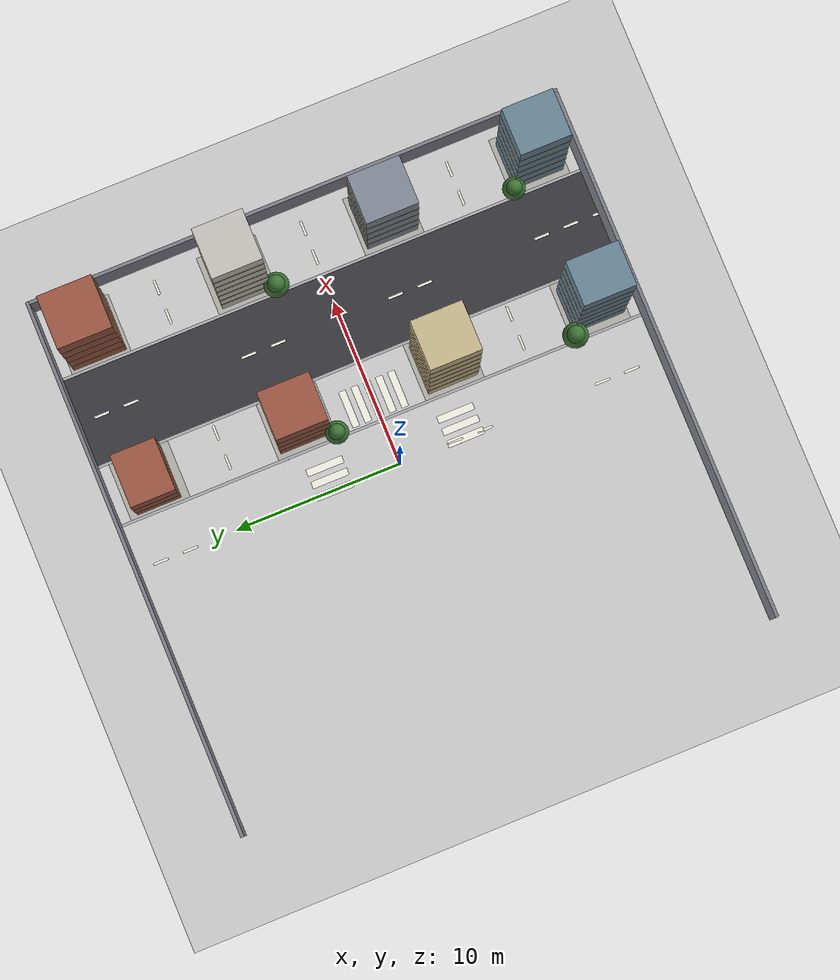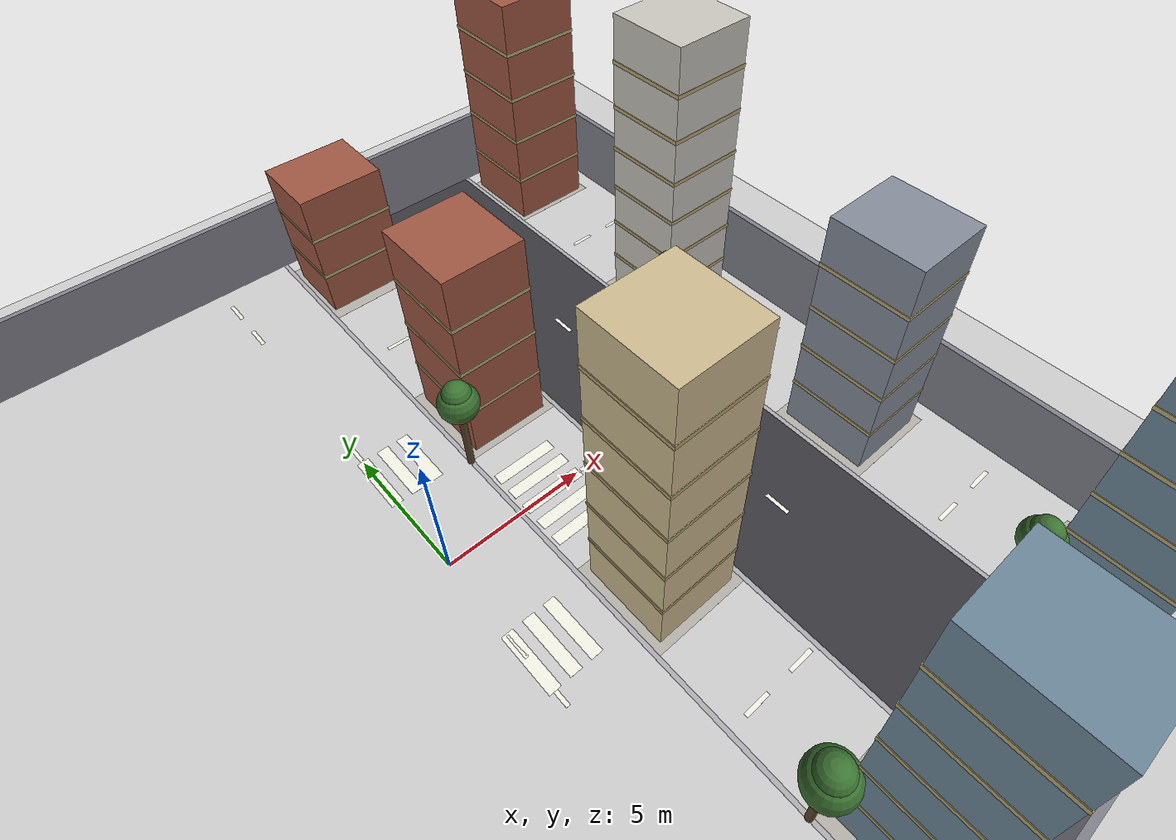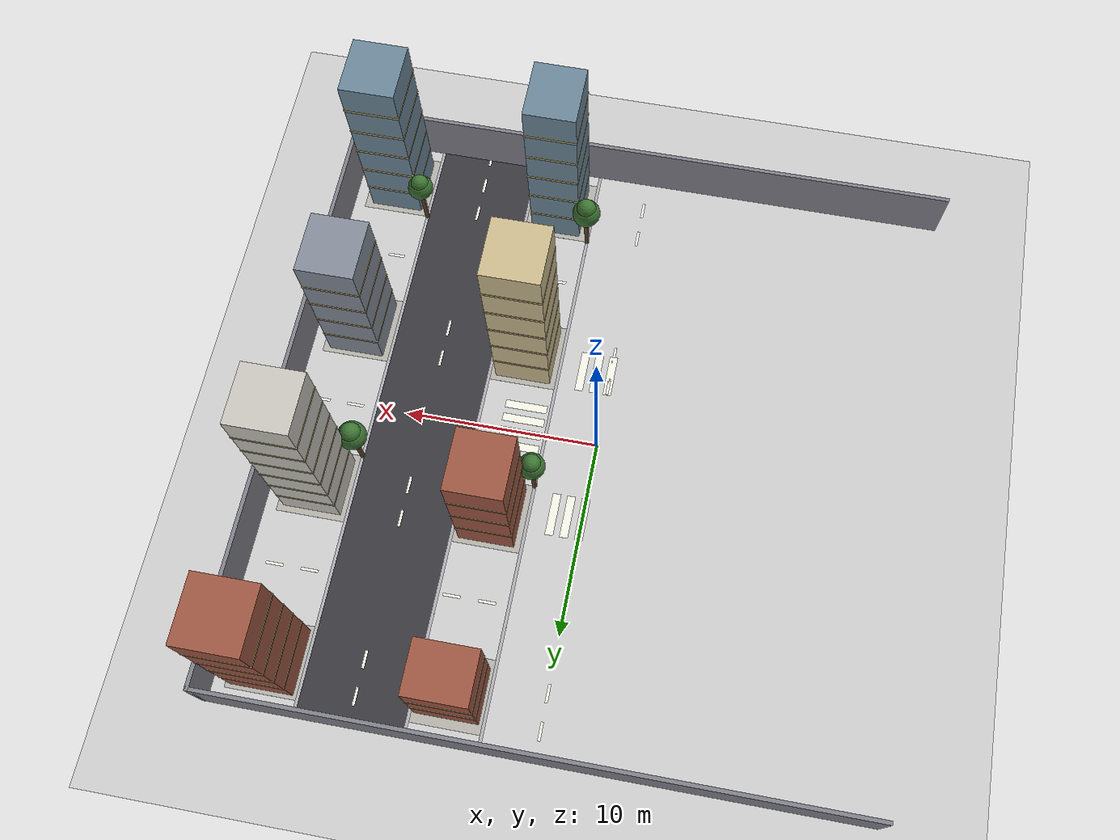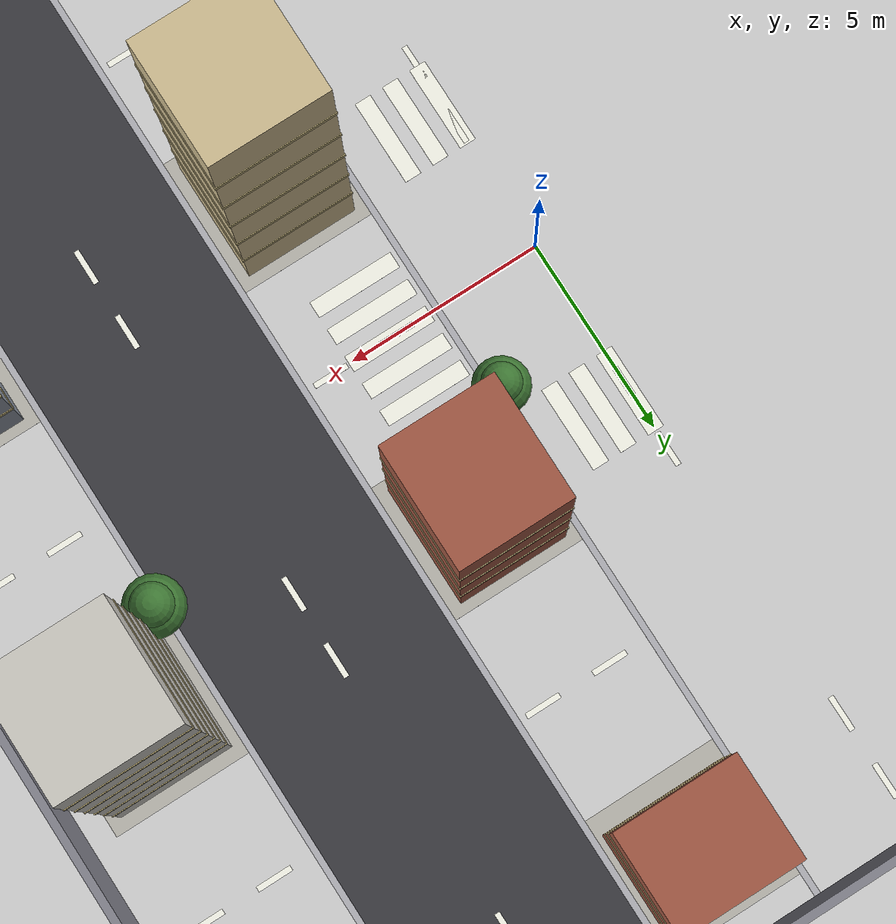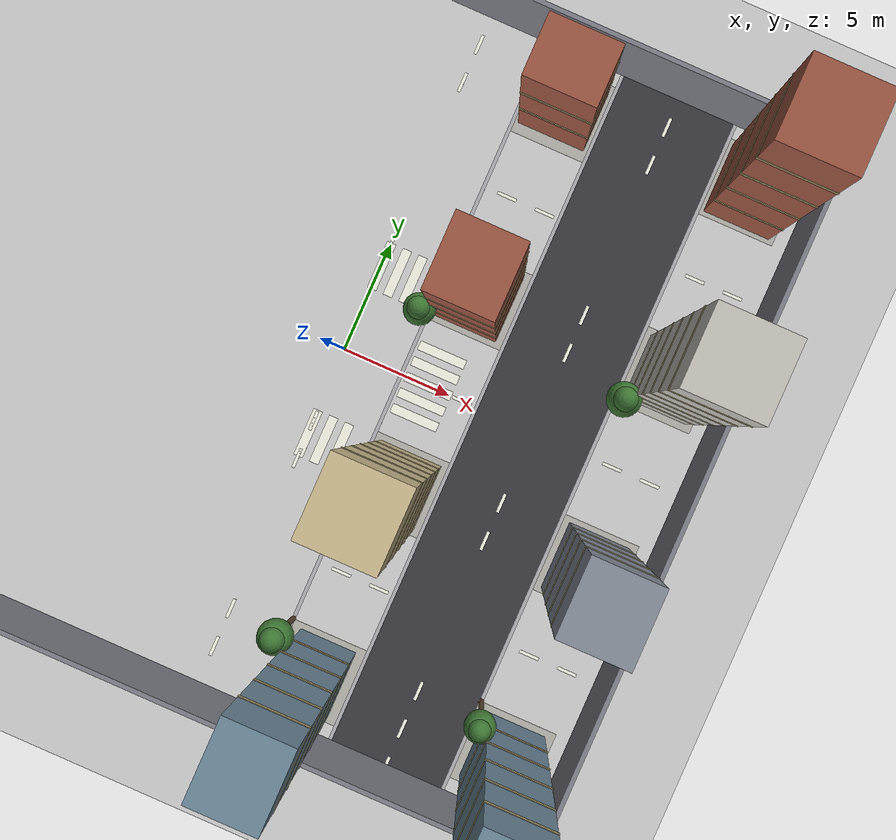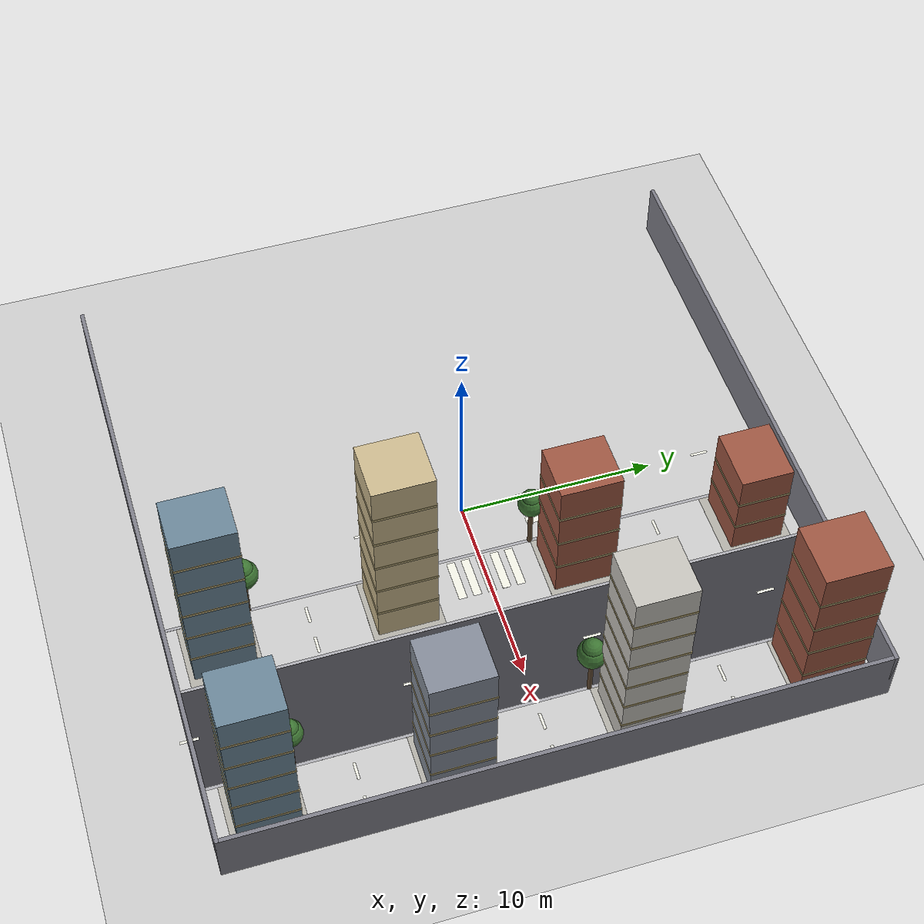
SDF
<sdf version="1.6">
 <world name="default">
  <include><uri>model://sun</uri></include>
  <include><uri>model://ground_plane</uri></include>
  <model name="kerb_ns_1_1">
   <static>true</static>
   <pose>2.7000 0.0000 0.0030 0 0 0</pose>
   <link name="link">
    <visual name="v">
     <geometry><box><size>0.160 32.000 0.002</size></box></geometry>
     <material><ambient>0.42 0.42 0.44 1</ambient><diffuse>0.68 0.68 0.70 1</diffuse></material>
    </visual>
   </link>
  </model>
  <model name="road_ns_2">
   <static>true</static>
   <pose>9.0000 0.0000 0.0010 0 0 0</pose>
   <link name="link">
    <visual name="v">
     <geometry><box><size>5.400 32.000 0.002</size></box></geometry>
     <material><ambient>0.13 0.13 0.14 1</ambient><diffuse>0.22 0.22 0.24 1</diffuse></material>
    </visual>
   </link>
  </model>
  <model name="kerb_ns_2_-1">
   <static>true</static>
   <pose>6.3000 0.0000 0.0030 0 0 0</pose>
   <link name="link">
    <visual name="v">
     <geometry><box><size>0.160 32.000 0.002</size></box></geometry>
     <material><ambient>0.42 0.42 0.44 1</ambient><diffuse>0.68 0.68 0.70 1</diffuse></material>
    </visual>
   </link>
  </model>
  <model name="kerb_ns_2_1">
   <static>true</static>
   <pose>11.7000 0.0000 0.0030 0 0 0</pose>
   <link name="link">
    <visual name="v">
     <geometry><box><size>0.160 32.000 0.002</size></box></geometry>
     <material><ambient>0.42 0.42 0.44 1</ambient><diffuse>0.68 0.68 0.70 1</diffuse></material>
    </visual>
   </link>
  </model>
  <model name="dash_ew_14">
   <static>true</static>
   <pose>3.8000 -9.0000 0.0035 0 0 0</pose>
   <link name="link">
    <visual name="v">
     <geometry><box><size>0.900 0.140 0.002</size></box></geometry>
     <material><ambient>0.60 0.60 0.55 1</ambient><diffuse>0.95 0.95 0.90 1</diffuse></material>
    </visual>
   </link>
  </model>
  <model name="dash_ew_15">
   <static>true</static>
   <pose>5.6000 -9.0000 0.0035 0 0 0</pose>
   <link name="link">
    <visual name="v">
     <geometry><box><size>0.900 0.140 0.002</size></box></geometry>
     <material><ambient>0.60 0.60 0.55 1</ambient><diffuse>0.95 0.95 0.90 1</diffuse></material>
    </visual>
   </link>
  </model>
  <model name="dash_ew_16">
   <static>true</static>
   <pose>12.8000 -9.0000 0.0035 0 0 0</pose>
   <link name="link">
    <visual name="v">
     <geometry><box><size>0.900 0.140 0.002</size></box></geometry>
     <material><ambient>0.60 0.60 0.55 1</ambient><diffuse>0.95 0.95 0.90 1</diffuse></material>
    </visual>
   </link>
  </model>
  <model name="dash_ew_17">
   <static>true</static>
   <pose>14.6000 -9.0000 0.0035 0 0 0</pose>
   <link name="link">
    <visual name="v">
     <geometry><box><size>0.900 0.140 0.002</size></box></geometry>
     <material><ambient>0.60 0.60 0.55 1</ambient><diffuse>0.95 0.95 0.90 1</diffuse></material>
    </visual>
   </link>
  </model>
  <model name="dash_ns_19">
   <static>true</static>
   <pose>0.0000 -14.2000 0.0035 0 0 0</pose>
   <link name="link">
    <visual name="v">
     <geometry><box><size>0.140 0.900 0.002</size></box></geometry>
     <material><ambient>0.60 0.60 0.55 1</ambient><diffuse>0.95 0.95 0.90 1</diffuse></material>
    </visual>
   </link>
  </model>
  <model name="dash_ns_20">
   <static>true</static>
   <pose>0.0000 -12.4000 0.0035 0 0 0</pose>
   <link name="link">
    <visual name="v">
     <geometry><box><size>0.140 0.900 0.002</size></box></geometry>
     <material><ambient>0.60 0.60 0.55 1</ambient><diffuse>0.95 0.95 0.90 1</diffuse></material>
    </visual>
   </link>
  </model>
  <model name="dash_ns_21">
   <static>true</static>
   <pose>0.0000 -5.2000 0.0035 0 0 0</pose>
   <link name="link">
    <visual name="v">
     <geometry><box><size>0.140 0.900 0.002</size></box></geometry>
     <material><ambient>0.60 0.60 0.55 1</ambient><diffuse>0.95 0.95 0.90 1</diffuse></material>
    </visual>
   </link>
  </model>
  <model name="dash_ns_22">
   <static>true</static>
   <pose>0.0000 -3.4000 0.0035 0 0 0</pose>
   <link name="link">
    <visual name="v">
     <geometry><box><size>0.140 0.900 0.002</size></box></geometry>
     <material><ambient>0.60 0.60 0.55 1</ambient><diffuse>0.95 0.95 0.90 1</diffuse></material>
    </visual>
   </link>
  </model>
  <model name="dash_ns_23">
   <static>true</static>
   <pose>0.0000 3.8000 0.0035 0 0 0</pose>
   <link name="link">
    <visual name="v">
     <geometry><box><size>0.140 0.900 0.002</size></box></geometry>
     <material><ambient>0.60 0.60 0.55 1</ambient><diffuse>0.95 0.95 0.90 1</diffuse></material>
    </visual>
   </link>
  </model>
  <model name="dash_ns_24">
   <static>true</static>
   <pose>0.0000 5.6000 0.0035 0 0 0</pose>
   <link name="link">
    <visual name="v">
     <geometry><box><size>0.140 0.900 0.002</size></box></geometry>
     <material><ambient>0.60 0.60 0.55 1</ambient><diffuse>0.95 0.95 0.90 1</diffuse></material>
    </visual>
   </link>
  </model>
  <model name="dash_ns_25">
   <static>true</static>
   <pose>0.0000 12.8000 0.0035 0 0 0</pose>
   <link name="link">
    <visual name="v">
     <geometry><box><size>0.140 0.900 0.002</size></box></geometry>
     <material><ambient>0.60 0.60 0.55 1</ambient><diffuse>0.95 0.95 0.90 1</diffuse></material>
    </visual>
   </link>
  </model>
  <model name="dash_ns_26">
   <static>true</static>
   <pose>0.0000 14.6000 0.0035 0 0 0</pose>
   <link name="link">
    <visual name="v">
     <geometry><box><size>0.140 0.900 0.002</size></box></geometry>
     <material><ambient>0.60 0.60 0.55 1</ambient><diffuse>0.95 0.95 0.90 1</diffuse></material>
    </visual>
   </link>
  </model>
  <model name="dash_ew_32">
   <static>true</static>
   <pose>3.8000 0.0000 0.0035 0 0 0</pose>
   <link name="link">
    <visual name="v">
     <geometry><box><size>0.900 0.140 0.002</size></box></geometry>
     <material><ambient>0.60 0.60 0.55 1</ambient><diffuse>0.95 0.95 0.90 1</diffuse></material>
    </visual>
   </link>
  </model>
  <model name="dash_ew_33">
   <static>true</static>
   <pose>5.6000 0.0000 0.0035 0 0 0</pose>
   <link name="link">
    <visual name="v">
     <geometry><box><size>0.900 0.140 0.002</size></box></geometry>
     <material><ambient>0.60 0.60 0.55 1</ambient><diffuse>0.95 0.95 0.90 1</diffuse></material>
    </visual>
   </link>
  </model>
  <model name="dash_ew_34">
   <static>true</static>
   <pose>12.8000 0.0000 0.0035 0 0 0</pose>
   <link name="link">
    <visual name="v">
     <geometry><box><size>0.900 0.140 0.002</size></box></geometry>
     <material><ambient>0.60 0.60 0.55 1</ambient><diffuse>0.95 0.95 0.90 1</diffuse></material>
    </visual>
   </link>
  </model>
  <model name="dash_ew_35">
   <static>true</static>
   <pose>14.6000 0.0000 0.0035 0 0 0</pose>
   <link name="link">
    <visual name="v">
     <geometry><box><size>0.900 0.140 0.002</size></box></geometry>
     <material><ambient>0.60 0.60 0.55 1</ambient><diffuse>0.95 0.95 0.90 1</diffuse></material>
    </visual>
   </link>
  </model>
  <model name="dash_ns_36">
   <static>true</static>
   <pose>9.0000 -16.0000 0.0035 0 0 0</pose>
   <link name="link">
    <visual name="v">
     <geometry><box><size>0.140 0.900 0.002</size></box></geometry>
     <material><ambient>0.60 0.60 0.55 1</ambient><diffuse>0.95 0.95 0.90 1</diffuse></material>
    </visual>
   </link>
  </model>
  <model name="dash_ns_37">
   <static>true</static>
   <pose>9.0000 -14.2000 0.0035 0 0 0</pose>
   <link name="link">
    <visual name="v">
     <geometry><box><size>0.140 0.900 0.002</size></box></geometry>
     <material><ambient>0.60 0.60 0.55 1</ambient><diffuse>0.95 0.95 0.90 1</diffuse></material>
    </visual>
   </link>
  </model>
  <model name="dash_ns_38">
   <static>true</static>
   <pose>9.0000 -12.4000 0.0035 0 0 0</pose>
   <link name="link">
    <visual name="v">
     <geometry><box><size>0.140 0.900 0.002</size></box></geometry>
     <material><ambient>0.60 0.60 0.55 1</ambient><diffuse>0.95 0.95 0.90 1</diffuse></material>
    </visual>
   </link>
  </model>
  <model name="dash_ns_39">
   <static>true</static>
   <pose>9.0000 -5.2000 0.0035 0 0 0</pose>
   <link name="link">
    <visual name="v">
     <geometry><box><size>0.140 0.900 0.002</size></box></geometry>
     <material><ambient>0.60 0.60 0.55 1</ambient><diffuse>0.95 0.95 0.90 1</diffuse></material>
    </visual>
   </link>
  </model>
  <model name="dash_ns_40">
   <static>true</static>
   <pose>9.0000 -3.4000 0.0035 0 0 0</pose>
   <link name="link">
    <visual name="v">
     <geometry><box><size>0.140 0.900 0.002</size></box></geometry>
     <material><ambient>0.60 0.60 0.55 1</ambient><diffuse>0.95 0.95 0.90 1</diffuse></material>
    </visual>
   </link>
  </model>
  <model name="dash_ns_41">
   <static>true</static>
   <pose>9.0000 3.8000 0.0035 0 0 0</pose>
   <link name="link">
    <visual name="v">
     <geometry><box><size>0.140 0.900 0.002</size></box></geometry>
     <material><ambient>0.60 0.60 0.55 1</ambient><diffuse>0.95 0.95 0.90 1</diffuse></material>
    </visual>
   </link>
  </model>
  <model name="dash_ns_42">
   <static>true</static>
   <pose>9.0000 5.6000 0.0035 0 0 0</pose>
   <link name="link">
    <visual name="v">
     <geometry><box><size>0.140 0.900 0.002</size></box></geometry>
     <material><ambient>0.60 0.60 0.55 1</ambient><diffuse>0.95 0.95 0.90 1</diffuse></material>
    </visual>
   </link>
  </model>
  <model name="dash_ns_43">
   <static>true</static>
   <pose>9.0000 12.8000 0.0035 0 0 0</pose>
   <link name="link">
    <visual name="v">
     <geometry><box><size>0.140 0.900 0.002</size></box></geometry>
     <material><ambient>0.60 0.60 0.55 1</ambient><diffuse>0.95 0.95 0.90 1</diffuse></material>
    </visual>
   </link>
  </model>
  <model name="dash_ns_44">
   <static>true</static>
   <pose>9.0000 14.6000 0.0035 0 0 0</pose>
   <link name="link">
    <visual name="v">
     <geometry><box><size>0.140 0.900 0.002</size></box></geometry>
     <material><ambient>0.60 0.60 0.55 1</ambient><diffuse>0.95 0.95 0.90 1</diffuse></material>
    </visual>
   </link>
  </model>
  <model name="dash_ew_50">
   <static>true</static>
   <pose>3.8000 9.0000 0.0035 0 0 0</pose>
   <link name="link">
    <visual name="v">
     <geometry><box><size>0.900 0.140 0.002</size></box></geometry>
     <material><ambient>0.60 0.60 0.55 1</ambient><diffuse>0.95 0.95 0.90 1</diffuse></material>
    </visual>
   </link>
  </model>
  <model name="dash_ew_51">
   <static>true</static>
   <pose>5.6000 9.0000 0.0035 0 0 0</pose>
   <link name="link">
    <visual name="v">
     <geometry><box><size>0.900 0.140 0.002</size></box></geometry>
     <material><ambient>0.60 0.60 0.55 1</ambient><diffuse>0.95 0.95 0.90 1</diffuse></material>
    </visual>
   </link>
  </model>
  <model name="dash_ew_52">
   <static>true</static>
   <pose>12.8000 9.0000 0.0035 0 0 0</pose>
   <link name="link">
    <visual name="v">
     <geometry><box><size>0.900 0.140 0.002</size></box></geometry>
     <material><ambient>0.60 0.60 0.55 1</ambient><diffuse>0.95 0.95 0.90 1</diffuse></material>
    </visual>
   </link>
  </model>
  <model name="dash_ew_53">
   <static>true</static>
   <pose>14.6000 9.0000 0.0035 0 0 0</pose>
   <link name="link">
    <visual name="v">
     <geometry><box><size>0.900 0.140 0.002</size></box></geometry>
     <material><ambient>0.60 0.60 0.55 1</ambient><diffuse>0.95 0.95 0.90 1</diffuse></material>
    </visual>
   </link>
  </model>
  <model name="zebra_2">
   <static>true</static>
   <pose>0.0000 4.0000 0.0035 0 0 0</pose>
   <link name="link">
    <visual name="v">
     <geometry><box><size>0.420 2.200 0.002</size></box></geometry>
     <material><ambient>0.60 0.60 0.55 1</ambient><diffuse>0.95 0.95 0.90 1</diffuse></material>
    </visual>
   </link>
  </model>
  <model name="zebra_3">
   <static>true</static>
   <pose>0.7500 4.0000 0.0035 0 0 0</pose>
   <link name="link">
    <visual name="v">
     <geometry><box><size>0.420 2.200 0.002</size></box></geometry>
     <material><ambient>0.60 0.60 0.55 1</ambient><diffuse>0.95 0.95 0.90 1</diffuse></material>
    </visual>
   </link>
  </model>
  <model name="zebra_4">
   <static>true</static>
   <pose>1.5000 4.0000 0.0035 0 0 0</pose>
   <link name="link">
    <visual name="v">
     <geometry><box><size>0.420 2.200 0.002</size></box></geometry>
     <material><ambient>0.60 0.60 0.55 1</ambient><diffuse>0.95 0.95 0.90 1</diffuse></material>
    </visual>
   </link>
  </model>
  <model name="zebra_7">
   <static>true</static>
   <pose>0.0000 -4.0000 0.0035 0 0 0</pose>
   <link name="link">
    <visual name="v">
     <geometry><box><size>0.420 2.200 0.002</size></box></geometry>
     <material><ambient>0.60 0.60 0.55 1</ambient><diffuse>0.95 0.95 0.90 1</diffuse></material>
    </visual>
   </link>
  </model>
  <model name="zebra_8">
   <static>true</static>
   <pose>0.7500 -4.0000 0.0035 0 0 0</pose>
   <link name="link">
    <visual name="v">
     <geometry><box><size>0.420 2.200 0.002</size></box></geometry>
     <material><ambient>0.60 0.60 0.55 1</ambient><diffuse>0.95 0.95 0.90 1</diffuse></material>
    </visual>
   </link>
  </model>
  <model name="zebra_9">
   <static>true</static>
   <pose>1.5000 -4.0000 0.0035 0 0 0</pose>
   <link name="link">
    <visual name="v">
     <geometry><box><size>0.420 2.200 0.002</size></box></geometry>
     <material><ambient>0.60 0.60 0.55 1</ambient><diffuse>0.95 0.95 0.90 1</diffuse></material>
    </visual>
   </link>
  </model>
  <model name="zebra_10">
   <static>true</static>
   <pose>4.0000 -1.5000 0.0035 0 0 0</pose>
   <link name="link">
    <visual name="v">
     <geometry><box><size>2.200 0.420 0.002</size></box></geometry>
     <material><ambient>0.60 0.60 0.55 1</ambient><diffuse>0.95 0.95 0.90 1</diffuse></material>
    </visual>
   </link>
  </model>
  <model name="zebra_11">
   <static>true</static>
   <pose>4.0000 -0.7500 0.0035 0 0 0</pose>
   <link name="link">
    <visual name="v">
     <geometry><box><size>2.200 0.420 0.002</size></box></geometry>
     <material><ambient>0.60 0.60 0.55 1</ambient><diffuse>0.95 0.95 0.90 1</diffuse></material>
    </visual>
   </link>
  </model>
  <model name="zebra_12">
   <static>true</static>
   <pose>4.0000 0.0000 0.0035 0 0 0</pose>
   <link name="link">
    <visual name="v">
     <geometry><box><size>2.200 0.420 0.002</size></box></geometry>
     <material><ambient>0.60 0.60 0.55 1</ambient><diffuse>0.95 0.95 0.90 1</diffuse></material>
    </visual>
   </link>
  </model>
  <model name="zebra_13">
   <static>true</static>
   <pose>4.0000 0.7500 0.0035 0 0 0</pose>
   <link name="link">
    <visual name="v">
     <geometry><box><size>2.200 0.420 0.002</size></box></geometry>
     <material><ambient>0.60 0.60 0.55 1</ambient><diffuse>0.95 0.95 0.90 1</diffuse></material>
    </visual>
   </link>
  </model>
  <model name="zebra_14">
   <static>true</static>
   <pose>4.0000 1.5000 0.0035 0 0 0</pose>
   <link name="link">
    <visual name="v">
     <geometry><box><size>2.200 0.420 0.002</size></box></geometry>
     <material><ambient>0.60 0.60 0.55 1</ambient><diffuse>0.95 0.95 0.90 1</diffuse></material>
    </visual>
   </link>
  </model>
  <model name="pavement_07">
   <static>true</static>
   <pose>4.5000 -13.5000 0.0010 0 0 0</pose>
   <link name="link">
    <visual name="v">
     <geometry><box><size>3.600 3.600 0.002</size></box></geometry>
     <material><ambient>0.44 0.43 0.41 1</ambient><diffuse>0.70 0.69 0.66 1</diffuse></material>
    </visual>
   </link>
  </model>
  <model name="pavement_08">
   <static>true</static>
   <pose>4.5000 -4.5000 0.0010 0 0 0</pose>
   <link name="link">
    <visual name="v">
     <geometry><box><size>3.600 3.600 0.002</size></box></geometry>
     <material><ambient>0.44 0.43 0.41 1</ambient><diffuse>0.70 0.69 0.66 1</diffuse></material>
    </visual>
   </link>
  </model>
  <model name="pavement_09">
   <static>true</static>
   <pose>4.5000 4.5000 0.0010 0 0 0</pose>
   <link name="link">
    <visual name="v">
     <geometry><box><size>3.600 3.600 0.002</size></box></geometry>
     <material><ambient>0.44 0.43 0.41 1</ambient><diffuse>0.70 0.69 0.66 1</diffuse></material>
    </visual>
   </link>
  </model>
  <model name="pavement_10">
   <static>true</static>
   <pose>4.5000 13.5000 0.0010 0 0 0</pose>
   <link name="link">
    <visual name="v">
     <geometry><box><size>3.600 3.600 0.002</size></box></geometry>
     <material><ambient>0.44 0.43 0.41 1</ambient><diffuse>0.70 0.69 0.66 1</diffuse></material>
    </visual>
   </link>
  </model>
  <model name="pavement_11">
   <static>true</static>
   <pose>13.5000 -13.5000 0.0010 0 0 0</pose>
   <link name="link">
    <visual name="v">
     <geometry><box><size>3.600 3.600 0.002</size></box></geometry>
     <material><ambient>0.44 0.43 0.41 1</ambient><diffuse>0.70 0.69 0.66 1</diffuse></material>
    </visual>
   </link>
  </model>
  <model name="pavement_12">
   <static>true</static>
   <pose>13.5000 -4.5000 0.0010 0 0 0</pose>
   <link name="link">
    <visual name="v">
     <geometry><box><size>3.600 3.600 0.002</size></box></geometry>
     <material><ambient>0.44 0.43 0.41 1</ambient><diffuse>0.70 0.69 0.66 1</diffuse></material>
    </visual>
   </link>
  </model>
  <model name="pavement_13">
   <static>true</static>
   <pose>13.5000 4.5000 0.0010 0 0 0</pose>
   <link name="link">
    <visual name="v">
     <geometry><box><size>3.600 3.600 0.002</size></box></geometry>
     <material><ambient>0.44 0.43 0.41 1</ambient><diffuse>0.70 0.69 0.66 1</diffuse></material>
    </visual>
   </link>
  </model>
  <model name="pavement_14">
   <static>true</static>
   <pose>13.5000 13.5000 0.0010 0 0 0</pose>
   <link name="link">
    <visual name="v">
     <geometry><box><size>3.600 3.600 0.002</size></box></geometry>
     <material><ambient>0.44 0.43 0.41 1</ambient><diffuse>0.70 0.69 0.66 1</diffuse></material>
    </visual>
   </link>
  </model>
  <model name="building_07">
   <static>true</static>
   <pose>4.5000 -13.5000 5.2943 0 0 0</pose>
   <link name="link">
    <collision name="c"><geometry><box><size>2.626 3.068 10.589</size></box></geometry></collision>
    <visual name="v">
     <geometry><box><size>2.626 3.068 10.589</size></box></geometry>
     <material><ambient>0.24 0.30 0.34 1</ambient><diffuse>0.42 0.53 0.60 1</diffuse></material>
    </visual>
   </link>
  </model>
  <model name="building_07_win1">
   <static>true</static>
   <pose>4.5000 -13.5000 1.7648 0 0 0</pose>
   <link name="link">
    <visual name="v">
     <geometry><box><size>2.666 3.108 0.140</size></box></geometry>
     <material>
      <ambient>0.30 0.28 0.20 1</ambient>
      <diffuse>0.72 0.66 0.46 1</diffuse>
      <emissive>0.30 0.26 0.15 1</emissive>
     </material>
    </visual>
   </link>
  </model>
  <model name="building_07_win2">
   <static>true</static>
   <pose>4.5000 -13.5000 3.5295 0 0 0</pose>
   <link name="link">
    <visual name="v">
     <geometry><box><size>2.666 3.108 0.140</size></box></geometry>
     <material>
      <ambient>0.30 0.28 0.20 1</ambient>
      <diffuse>0.72 0.66 0.46 1</diffuse>
      <emissive>0.30 0.26 0.15 1</emissive>
     </material>
    </visual>
   </link>
  </model>
  <model name="building_07_win3">
   <static>true</static>
   <pose>4.5000 -13.5000 5.2943 0 0 0</pose>
   <link name="link">
    <visual name="v">
     <geometry><box><size>2.666 3.108 0.140</size></box></geometry>
     <material>
      <ambient>0.30 0.28 0.20 1</ambient>
      <diffuse>0.72 0.66 0.46 1</diffuse>
      <emissive>0.30 0.26 0.15 1</emissive>
     </material>
    </visual>
   </link>
  </model>
  <model name="building_07_win4">
   <static>true</static>
   <pose>4.5000 -13.5000 7.0590 0 0 0</pose>
   <link name="link">
    <visual name="v">
     <geometry><box><size>2.666 3.108 0.140</size></box></geometry>
     <material>
      <ambient>0.30 0.28 0.20 1</ambient>
      <diffuse>0.72 0.66 0.46 1</diffuse>
      <emissive>0.30 0.26 0.15 1</emissive>
     </material>
    </visual>
   </link>
  </model>
  <model name="building_07_win5">
   <static>true</static>
   <pose>4.5000 -13.5000 8.8238 0 0 0</pose>
   <link name="link">
    <visual name="v">
     <geometry><box><size>2.666 3.108 0.140</size></box></geometry>
     <material>
      <ambient>0.30 0.28 0.20 1</ambient>
      <diffuse>0.72 0.66 0.46 1</diffuse>
      <emissive>0.30 0.26 0.15 1</emissive>
     </material>
    </visual>
   </link>
  </model>
  <model name="building_08">
   <static>true</static>
   <pose>4.5000 -4.5000 5.5153 0 0 0</pose>
   <link name="link">
    <collision name="c"><geometry><box><size>2.884 3.031 11.031</size></box></geometry></collision>
    <visual name="v">
     <geometry><box><size>2.884 3.031 11.031</size></box></geometry>
     <material><ambient>0.50 0.45 0.34 1</ambient><diffuse>0.80 0.73 0.56 1</diffuse></material>
    </visual>
   </link>
  </model>
  <model name="building_08_win1">
   <static>true</static>
   <pose>4.5000 -4.5000 1.8384 0 0 0</pose>
   <link name="link">
    <visual name="v">
     <geometry><box><size>2.924 3.071 0.140</size></box></geometry>
     <material>
      <ambient>0.30 0.28 0.20 1</ambient>
      <diffuse>0.72 0.66 0.46 1</diffuse>
      <emissive>0.30 0.26 0.15 1</emissive>
     </material>
    </visual>
   </link>
  </model>
  <model name="building_08_win2">
   <static>true</static>
   <pose>4.5000 -4.5000 3.6768 0 0 0</pose>
   <link name="link">
    <visual name="v">
     <geometry><box><size>2.924 3.071 0.140</size></box></geometry>
     <material>
      <ambient>0.30 0.28 0.20 1</ambient>
      <diffuse>0.72 0.66 0.46 1</diffuse>
      <emissive>0.30 0.26 0.15 1</emissive>
     </material>
    </visual>
   </link>
  </model>
  <model name="building_08_win3">
   <static>true</static>
   <pose>4.5000 -4.5000 5.5153 0 0 0</pose>
   <link name="link">
    <visual name="v">
     <geometry><box><size>2.924 3.071 0.140</size></box></geometry>
     <material>
      <ambient>0.30 0.28 0.20 1</ambient>
      <diffuse>0.72 0.66 0.46 1</diffuse>
      <emissive>0.30 0.26 0.15 1</emissive>
     </material>
    </visual>
   </link>
  </model>
  <model name="building_08_win4">
   <static>true</static>
   <pose>4.5000 -4.5000 7.3537 0 0 0</pose>
   <link name="link">
    <visual name="v">
     <geometry><box><size>2.924 3.071 0.140</size></box></geometry>
     <material>
      <ambient>0.30 0.28 0.20 1</ambient>
      <diffuse>0.72 0.66 0.46 1</diffuse>
      <emissive>0.30 0.26 0.15 1</emissive>
     </material>
    </visual>
   </link>
  </model>
  <model name="building_08_win5">
   <static>true</static>
   <pose>4.5000 -4.5000 9.1921 0 0 0</pose>
   <link name="link">
    <visual name="v">
     <geometry><box><size>2.924 3.071 0.140</size></box></geometry>
     <material>
      <ambient>0.30 0.28 0.20 1</ambient>
      <diffuse>0.72 0.66 0.46 1</diffuse>
      <emissive>0.30 0.26 0.15 1</emissive>
     </material>
    </visual>
   </link>
  </model>
  <model name="building_09">
   <static>true</static>
   <pose>4.5000 4.5000 3.7785 0 0 0</pose>
   <link name="link">
    <collision name="c"><geometry><box><size>2.837 3.081 7.557</size></box></geometry></collision>
    <visual name="v">
     <geometry><box><size>2.837 3.081 7.557</size></box></geometry>
     <material><ambient>0.38 0.22 0.17 1</ambient><diffuse>0.62 0.34 0.26 1</diffuse></material>
    </visual>
   </link>
  </model>
  <model name="building_09_win1">
   <static>true</static>
   <pose>4.5000 4.5000 1.8892 0 0 0</pose>
   <link name="link">
    <visual name="v">
     <geometry><box><size>2.877 3.121 0.140</size></box></geometry>
     <material>
      <ambient>0.30 0.28 0.20 1</ambient>
      <diffuse>0.72 0.66 0.46 1</diffuse>
      <emissive>0.30 0.26 0.15 1</emissive>
     </material>
    </visual>
   </link>
  </model>
  <model name="building_09_win2">
   <static>true</static>
   <pose>4.5000 4.5000 3.7785 0 0 0</pose>
   <link name="link">
    <visual name="v">
     <geometry><box><size>2.877 3.121 0.140</size></box></geometry>
     <material>
      <ambient>0.30 0.28 0.20 1</ambient>
      <diffuse>0.72 0.66 0.46 1</diffuse>
      <emissive>0.30 0.26 0.15 1</emissive>
     </material>
    </visual>
   </link>
  </model>
  <model name="building_09_win3">
   <static>true</static>
   <pose>4.5000 4.5000 5.6677 0 0 0</pose>
   <link name="link">
    <visual name="v">
     <geometry><box><size>2.877 3.121 0.140</size></box></geometry>
     <material>
      <ambient>0.30 0.28 0.20 1</ambient>
      <diffuse>0.72 0.66 0.46 1</diffuse>
      <emissive>0.30 0.26 0.15 1</emissive>
     </material>
    </visual>
   </link>
  </model>
  <model name="building_10">
   <static>true</static>
   <pose>4.5000 13.5000 2.5439 0 0 0</pose>
   <link name="link">
    <collision name="c"><geometry><box><size>3.127 2.658 5.088</size></box></geometry></collision>
    <visual name="v">
     <geometry><box><size>3.127 2.658 5.088</size></box></geometry>
     <material><ambient>0.38 0.22 0.17 1</ambient><diffuse>0.62 0.34 0.26 1</diffuse></material>
    </visual>
   </link>
  </model>
  <model name="building_10_win1">
   <static>true</static>
   <pose>4.5000 13.5000 1.6959 0 0 0</pose>
   <link name="link">
    <visual name="v">
     <geometry><box><size>3.167 2.698 0.140</size></box></geometry>
     <material>
      <ambient>0.30 0.28 0.20 1</ambient>
      <diffuse>0.72 0.66 0.46 1</diffuse>
      <emissive>0.30 0.26 0.15 1</emissive>
     </material>
    </visual>
   </link>
  </model>
  <model name="building_10_win2">
   <static>true</static>
   <pose>4.5000 13.5000 3.3918 0 0 0</pose>
   <link name="link">
    <visual name="v">
     <geometry><box><size>3.167 2.698 0.140</size></box></geometry>
     <material>
      <ambient>0.30 0.28 0.20 1</ambient>
      <diffuse>0.72 0.66 0.46 1</diffuse>
      <emissive>0.30 0.26 0.15 1</emissive>
     </material>
    </visual>
   </link>
  </model>
  <model name="building_11">
   <static>true</static>
   <pose>13.5000 -13.5000 5.1159 0 0 0</pose>
   <link name="link">
    <collision name="c"><geometry><box><size>2.755 3.003 10.232</size></box></geometry></collision>
    <visual name="v">
     <geometry><box><size>2.755 3.003 10.232</size></box></geometry>
     <material><ambient>0.24 0.30 0.34 1</ambient><diffuse>0.42 0.53 0.60 1</diffuse></material>
    </visual>
   </link>
  </model>
  <model name="building_11_win1">
   <static>true</static>
   <pose>13.5000 -13.5000 1.7053 0 0 0</pose>
   <link name="link">
    <visual name="v">
     <geometry><box><size>2.795 3.043 0.140</size></box></geometry>
     <material>
      <ambient>0.30 0.28 0.20 1</ambient>
      <diffuse>0.72 0.66 0.46 1</diffuse>
      <emissive>0.30 0.26 0.15 1</emissive>
     </material>
    </visual>
   </link>
  </model>
  <model name="building_11_win2">
   <static>true</static>
   <pose>13.5000 -13.5000 3.4106 0 0 0</pose>
   <link name="link">
    <visual name="v">
     <geometry><box><size>2.795 3.043 0.140</size></box></geometry>
     <material>
      <ambient>0.30 0.28 0.20 1</ambient>
      <diffuse>0.72 0.66 0.46 1</diffuse>
      <emissive>0.30 0.26 0.15 1</emissive>
     </material>
    </visual>
   </link>
  </model>
  <model name="building_11_win3">
   <static>true</static>
   <pose>13.5000 -13.5000 5.1159 0 0 0</pose>
   <link name="link">
    <visual name="v">
     <geometry><box><size>2.795 3.043 0.140</size></box></geometry>
     <material>
      <ambient>0.30 0.28 0.20 1</ambient>
      <diffuse>0.72 0.66 0.46 1</diffuse>
      <emissive>0.30 0.26 0.15 1</emissive>
     </material>
    </visual>
   </link>
  </model>
  <model name="building_11_win4">
   <static>true</static>
   <pose>13.5000 -13.5000 6.8212 0 0 0</pose>
   <link name="link">
    <visual name="v">
     <geometry><box><size>2.795 3.043 0.140</size></box></geometry>
     <material>
      <ambient>0.30 0.28 0.20 1</ambient>
      <diffuse>0.72 0.66 0.46 1</diffuse>
      <emissive>0.30 0.26 0.15 1</emissive>
     </material>
    </visual>
   </link>
  </model>
  <model name="building_11_win5">
   <static>true</static>
   <pose>13.5000 -13.5000 8.5265 0 0 0</pose>
   <link name="link">
    <visual name="v">
     <geometry><box><size>2.795 3.043 0.140</size></box></geometry>
     <material>
      <ambient>0.30 0.28 0.20 1</ambient>
      <diffuse>0.72 0.66 0.46 1</diffuse>
      <emissive>0.30 0.26 0.15 1</emissive>
     </material>
    </visual>
   </link>
  </model>
  <model name="building_12">
   <static>true</static>
   <pose>13.5000 -4.5000 4.2961 0 0 0</pose>
   <link name="link">
    <collision name="c"><geometry><box><size>2.853 3.100 8.592</size></box></geometry></collision>
    <visual name="v">
     <geometry><box><size>2.853 3.100 8.592</size></box></geometry>
     <material><ambient>0.30 0.32 0.36 1</ambient><diffuse>0.52 0.55 0.60 1</diffuse></material>
    </visual>
   </link>
  </model>
  <model name="building_12_win1">
   <static>true</static>
   <pose>13.5000 -4.5000 1.7184 0 0 0</pose>
   <link name="link">
    <visual name="v">
     <geometry><box><size>2.893 3.140 0.140</size></box></geometry>
     <material>
      <ambient>0.30 0.28 0.20 1</ambient>
      <diffuse>0.72 0.66 0.46 1</diffuse>
      <emissive>0.30 0.26 0.15 1</emissive>
     </material>
    </visual>
   </link>
  </model>
  <model name="building_12_win2">
   <static>true</static>
   <pose>13.5000 -4.5000 3.4369 0 0 0</pose>
   <link name="link">
    <visual name="v">
     <geometry><box><size>2.893 3.140 0.140</size></box></geometry>
     <material>
      <ambient>0.30 0.28 0.20 1</ambient>
      <diffuse>0.72 0.66 0.46 1</diffuse>
      <emissive>0.30 0.26 0.15 1</emissive>
     </material>
    </visual>
   </link>
  </model>
  <model name="building_12_win3">
   <static>true</static>
   <pose>13.5000 -4.5000 5.1553 0 0 0</pose>
   <link name="link">
    <visual name="v">
     <geometry><box><size>2.893 3.140 0.140</size></box></geometry>
     <material>
      <ambient>0.30 0.28 0.20 1</ambient>
      <diffuse>0.72 0.66 0.46 1</diffuse>
      <emissive>0.30 0.26 0.15 1</emissive>
     </material>
    </visual>
   </link>
  </model>
  <model name="building_12_win4">
   <static>true</static>
   <pose>13.5000 -4.5000 6.8737 0 0 0</pose>
   <link name="link">
    <visual name="v">
     <geometry><box><size>2.893 3.140 0.140</size></box></geometry>
     <material>
      <ambient>0.30 0.28 0.20 1</ambient>
      <diffuse>0.72 0.66 0.46 1</diffuse>
      <emissive>0.30 0.26 0.15 1</emissive>
     </material>
    </visual>
   </link>
  </model>
  <model name="building_13">
   <static>true</static>
   <pose>13.5000 4.5000 5.6168 0 0 0</pose>
   <link name="link">
    <collision name="c"><geometry><box><size>2.951 2.951 11.234</size></box></geometry></collision>
    <visual name="v">
     <geometry><box><size>2.951 2.951 11.234</size></box></geometry>
     <material><ambient>0.55 0.54 0.52 1</ambient><diffuse>0.78 0.77 0.74 1</diffuse></material>
    </visual>
   </link>
  </model>
  <model name="building_13_win1">
   <static>true</static>
   <pose>13.5000 4.5000 1.6048 0 0 0</pose>
   <link name="link">
    <visual name="v">
     <geometry><box><size>2.991 2.991 0.140</size></box></geometry>
     <material>
      <ambient>0.30 0.28 0.20 1</ambient>
      <diffuse>0.72 0.66 0.46 1</diffuse>
      <emissive>0.30 0.26 0.15 1</emissive>
     </material>
    </visual>
   </link>
  </model>
  <model name="building_13_win2">
   <static>true</static>
   <pose>13.5000 4.5000 3.2096 0 0 0</pose>
   <link name="link">
    <visual name="v">
     <geometry><box><size>2.991 2.991 0.140</size></box></geometry>
     <material>
      <ambient>0.30 0.28 0.20 1</ambient>
      <diffuse>0.72 0.66 0.46 1</diffuse>
      <emissive>0.30 0.26 0.15 1</emissive>
     </material>
    </visual>
   </link>
  </model>
  <model name="building_13_win3">
   <static>true</static>
   <pose>13.5000 4.5000 4.8144 0 0 0</pose>
   <link name="link">
    <visual name="v">
     <geometry><box><size>2.991 2.991 0.140</size></box></geometry>
     <material>
      <ambient>0.30 0.28 0.20 1</ambient>
      <diffuse>0.72 0.66 0.46 1</diffuse>
      <emissive>0.30 0.26 0.15 1</emissive>
     </material>
    </visual>
   </link>
  </model>
  <model name="building_13_win4">
   <static>true</static>
   <pose>13.5000 4.5000 6.4192 0 0 0</pose>
   <link name="link">
    <visual name="v">
     <geometry><box><size>2.991 2.991 0.140</size></box></geometry>
     <material>
      <ambient>0.30 0.28 0.20 1</ambient>
      <diffuse>0.72 0.66 0.46 1</diffuse>
      <emissive>0.30 0.26 0.15 1</emissive>
     </material>
    </visual>
   </link>
  </model>
  <model name="building_13_win5">
   <static>true</static>
   <pose>13.5000 4.5000 8.0240 0 0 0</pose>
   <link name="link">
    <visual name="v">
     <geometry><box><size>2.991 2.991 0.140</size></box></geometry>
     <material>
      <ambient>0.30 0.28 0.20 1</ambient>
      <diffuse>0.72 0.66 0.46 1</diffuse>
      <emissive>0.30 0.26 0.15 1</emissive>
     </material>
    </visual>
   </link>
  </model>
  <model name="building_13_win6">
   <static>true</static>
   <pose>13.5000 4.5000 9.6288 0 0 0</pose>
   <link name="link">
    <visual name="v">
     <geometry><box><size>2.991 2.991 0.140</size></box></geometry>
     <material>
      <ambient>0.30 0.28 0.20 1</ambient>
      <diffuse>0.72 0.66 0.46 1</diffuse>
      <emissive>0.30 0.26 0.15 1</emissive>
     </material>
    </visual>
   </link>
  </model>
  <model name="building_14">
   <static>true</static>
   <pose>13.5000 13.5000 4.6851 0 0 0</pose>
   <link name="link">
    <collision name="c"><geometry><box><size>3.114 3.195 9.370</size></box></geometry></collision>
    <visual name="v">
     <geometry><box><size>3.114 3.195 9.370</size></box></geometry>
     <material><ambient>0.38 0.22 0.17 1</ambient><diffuse>0.62 0.34 0.26 1</diffuse></material>
    </visual>
   </link>
  </model>
  <model name="building_14_win1">
   <static>true</static>
   <pose>13.5000 13.5000 1.8740 0 0 0</pose>
   <link name="link">
    <visual name="v">
     <geometry><box><size>3.154 3.235 0.140</size></box></geometry>
     <material>
      <ambient>0.30 0.28 0.20 1</ambient>
      <diffuse>0.72 0.66 0.46 1</diffuse>
      <emissive>0.30 0.26 0.15 1</emissive>
     </material>
    </visual>
   </link>
  </model>
  <model name="building_14_win2">
   <static>true</static>
   <pose>13.5000 13.5000 3.7481 0 0 0</pose>
   <link name="link">
    <visual name="v">
     <geometry><box><size>3.154 3.235 0.140</size></box></geometry>
     <material>
      <ambient>0.30 0.28 0.20 1</ambient>
      <diffuse>0.72 0.66 0.46 1</diffuse>
      <emissive>0.30 0.26 0.15 1</emissive>
     </material>
    </visual>
   </link>
  </model>
  <model name="building_14_win3">
   <static>true</static>
   <pose>13.5000 13.5000 5.6221 0 0 0</pose>
   <link name="link">
    <visual name="v">
     <geometry><box><size>3.154 3.235 0.140</size></box></geometry>
     <material>
      <ambient>0.30 0.28 0.20 1</ambient>
      <diffuse>0.72 0.66 0.46 1</diffuse>
      <emissive>0.30 0.26 0.15 1</emissive>
     </material>
    </visual>
   </link>
  </model>
  <model name="building_14_win4">
   <static>true</static>
   <pose>13.5000 13.5000 7.4962 0 0 0</pose>
   <link name="link">
    <visual name="v">
     <geometry><box><size>3.154 3.235 0.140</size></box></geometry>
     <material>
      <ambient>0.30 0.28 0.20 1</ambient>
      <diffuse>0.72 0.66 0.46 1</diffuse>
      <emissive>0.30 0.26 0.15 1</emissive>
     </material>
    </visual>
   </link>
  </model>
  <model name="tree_st_6_trunk">
   <static>true</static>
   <pose>2.7000 -11.7000 1.3500 0 0 0</pose>
   <link name="link">
    <collision name="c">
     <geometry><cylinder><radius>0.120</radius><length>2.700</length></cylinder></geometry>
    </collision>
    <visual name="v">
     <geometry><cylinder><radius>0.120</radius><length>2.700</length></cylinder></geometry>
     <material><ambient>0.20 0.15 0.10 1</ambient><diffuse>0.36 0.27 0.18 1</diffuse></material>
    </visual>
   </link>
  </model>
  <model name="tree_st_6_crown">
   <static>true</static>
   <pose>2.7000 -11.7000 3.0185 0 0 0</pose>
   <link name="link">
    <collision name="c"><geometry><sphere><radius>0.740</radius></sphere></geometry></collision>
    <visual name="v">
     <geometry><sphere><radius>0.740</radius></sphere></geometry>
     <material><ambient>0.12 0.24 0.10 1</ambient><diffuse>0.24 0.46 0.20 1</diffuse></material>
    </visual>
   </link>
  </model>
  <model name="tree_st_6_crown2">
   <static>true</static>
   <pose>2.7000 -11.7000 3.4253 0 0 0</pose>
   <link name="link">
    <collision name="c"><geometry><sphere><radius>0.533</radius></sphere></geometry></collision>
    <visual name="v">
     <geometry><sphere><radius>0.533</radius></sphere></geometry>
     <material><ambient>0.12 0.24 0.10 1</ambient><diffuse>0.24 0.46 0.20 1</diffuse></material>
    </visual>
   </link>
  </model>
  <model name="tree_st_8_trunk">
   <static>true</static>
   <pose>2.7000 2.7000 1.3500 0 0 0</pose>
   <link name="link">
    <collision name="c">
     <geometry><cylinder><radius>0.120</radius><length>2.700</length></cylinder></geometry>
    </collision>
    <visual name="v">
     <geometry><cylinder><radius>0.120</radius><length>2.700</length></cylinder></geometry>
     <material><ambient>0.20 0.15 0.10 1</ambient><diffuse>0.36 0.27 0.18 1</diffuse></material>
    </visual>
   </link>
  </model>
  <model name="tree_st_8_crown">
   <static>true</static>
   <pose>2.7000 2.7000 3.0537 0 0 0</pose>
   <link name="link">
    <collision name="c"><geometry><sphere><radius>0.671</radius></sphere></geometry></collision>
    <visual name="v">
     <geometry><sphere><radius>0.671</radius></sphere></geometry>
     <material><ambient>0.12 0.24 0.10 1</ambient><diffuse>0.24 0.46 0.20 1</diffuse></material>
    </visual>
   </link>
  </model>
  <model name="tree_st_8_crown2">
   <static>true</static>
   <pose>2.7000 2.7000 3.4228 0 0 0</pose>
   <link name="link">
    <collision name="c"><geometry><sphere><radius>0.483</radius></sphere></geometry></collision>
    <visual name="v">
     <geometry><sphere><radius>0.483</radius></sphere></geometry>
     <material><ambient>0.12 0.24 0.10 1</ambient><diffuse>0.24 0.46 0.20 1</diffuse></material>
    </visual>
   </link>
  </model>
  <model name="tree_st_10_trunk">
   <static>true</static>
   <pose>11.7000 -11.7000 1.3500 0 0 0</pose>
   <link name="link">
    <collision name="c">
     <geometry><cylinder><radius>0.120</radius><length>2.700</length></cylinder></geometry>
    </collision>
    <visual name="v">
     <geometry><cylinder><radius>0.120</radius><length>2.700</length></cylinder></geometry>
     <material><ambient>0.20 0.15 0.10 1</ambient><diffuse>0.36 0.27 0.18 1</diffuse></material>
    </visual>
   </link>
  </model>
  <model name="tree_st_10_crown">
   <static>true</static>
   <pose>11.7000 -11.7000 2.9683 0 0 0</pose>
   <link name="link">
    <collision name="c"><geometry><sphere><radius>0.663</radius></sphere></geometry></collision>
    <visual name="v">
     <geometry><sphere><radius>0.663</radius></sphere></geometry>
     <material><ambient>0.12 0.24 0.10 1</ambient><diffuse>0.24 0.46 0.20 1</diffuse></material>
    </visual>
   </link>
  </model>
  <model name="tree_st_10_crown2">
   <static>true</static>
   <pose>11.7000 -11.7000 3.3331 0 0 0</pose>
   <link name="link">
    <collision name="c"><geometry><sphere><radius>0.478</radius></sphere></geometry></collision>
    <visual name="v">
     <geometry><sphere><radius>0.478</radius></sphere></geometry>
     <material><ambient>0.12 0.24 0.10 1</ambient><diffuse>0.24 0.46 0.20 1</diffuse></material>
    </visual>
   </link>
  </model>
  <model name="tree_st_12_trunk">
   <static>true</static>
   <pose>11.7000 2.7000 1.3500 0 0 0</pose>
   <link name="link">
    <collision name="c">
     <geometry><cylinder><radius>0.120</radius><length>2.700</length></cylinder></geometry>
    </collision>
    <visual name="v">
     <geometry><cylinder><radius>0.120</radius><length>2.700</length></cylinder></geometry>
     <material><ambient>0.20 0.15 0.10 1</ambient><diffuse>0.36 0.27 0.18 1</diffuse></material>
    </visual>
   </link>
  </model>
  <model name="tree_st_12_crown">
   <static>true</static>
   <pose>11.7000 2.7000 2.9680 0 0 0</pose>
   <link name="link">
    <collision name="c"><geometry><sphere><radius>0.729</radius></sphere></geometry></collision>
    <visual name="v">
     <geometry><sphere><radius>0.729</radius></sphere></geometry>
     <material><ambient>0.12 0.24 0.10 1</ambient><diffuse>0.24 0.46 0.20 1</diffuse></material>
    </visual>
   </link>
  </model>
  <model name="tree_st_12_crown2">
   <static>true</static>
   <pose>11.7000 2.7000 3.3687 0 0 0</pose>
   <link name="link">
    <collision name="c"><geometry><sphere><radius>0.525</radius></sphere></geometry></collision>
    <visual name="v">
     <geometry><sphere><radius>0.525</radius></sphere></geometry>
     <material><ambient>0.12 0.24 0.10 1</ambient><diffuse>0.24 0.46 0.20 1</diffuse></material>
    </visual>
   </link>
  </model>
  <model name="wall_north">
   <static>true</static>
   <pose>0.0000 16.0000 1.5000 0 0 0</pose>
   <link name="link">
    <collision name="c"><geometry><box><size>32.200 0.200 3.000</size></box></geometry></collision>
    <visual name="v">
     <geometry><box><size>32.200 0.200 3.000</size></box></geometry>
     <material><ambient>0.30 0.30 0.32 1</ambient><diffuse>0.50 0.50 0.54 1</diffuse></material>
    </visual>
   </link>
  </model>
  <model name="wall_south">
   <static>true</static>
   <pose>0.0000 -16.0000 1.5000 0 0 0</pose>
   <link name="link">
    <collision name="c"><geometry><box><size>32.200 0.200 3.000</size></box></geometry></collision>
    <visual name="v">
     <geometry><box><size>32.200 0.200 3.000</size></box></geometry>
     <material><ambient>0.30 0.30 0.32 1</ambient><diffuse>0.50 0.50 0.54 1</diffuse></material>
    </visual>
   </link>
  </model>
  <model name="wall_east">
   <static>true</static>
   <pose>16.0000 0.0000 1.5000 0 0 0</pose>
   <link name="link">
    <collision name="c"><geometry><box><size>0.200 32.200 3.000</size></box></geometry></collision>
    <visual name="v">
     <geometry><box><size>0.200 32.200 3.000</size></box></geometry>
     <material><ambient>0.30 0.30 0.32 1</ambient><diffuse>0.50 0.50 0.54 1</diffuse></material>
    </visual>
   </link>
  </model>
 </world>
</sdf>
